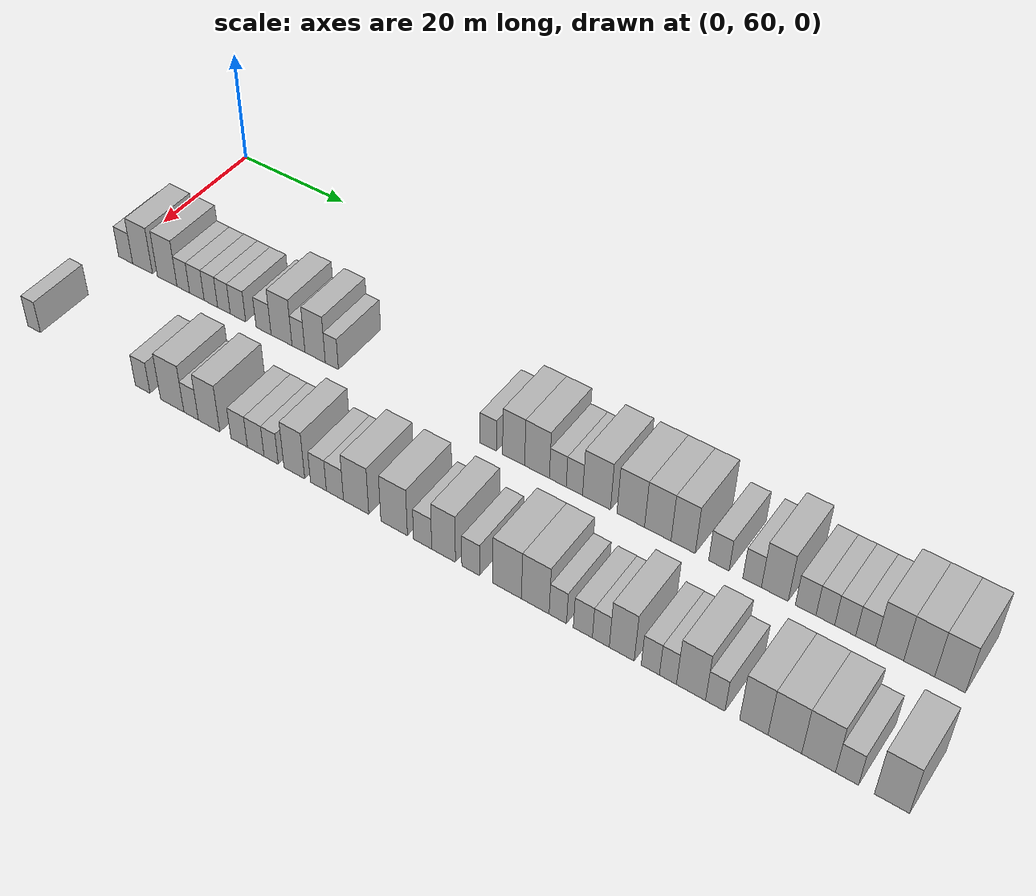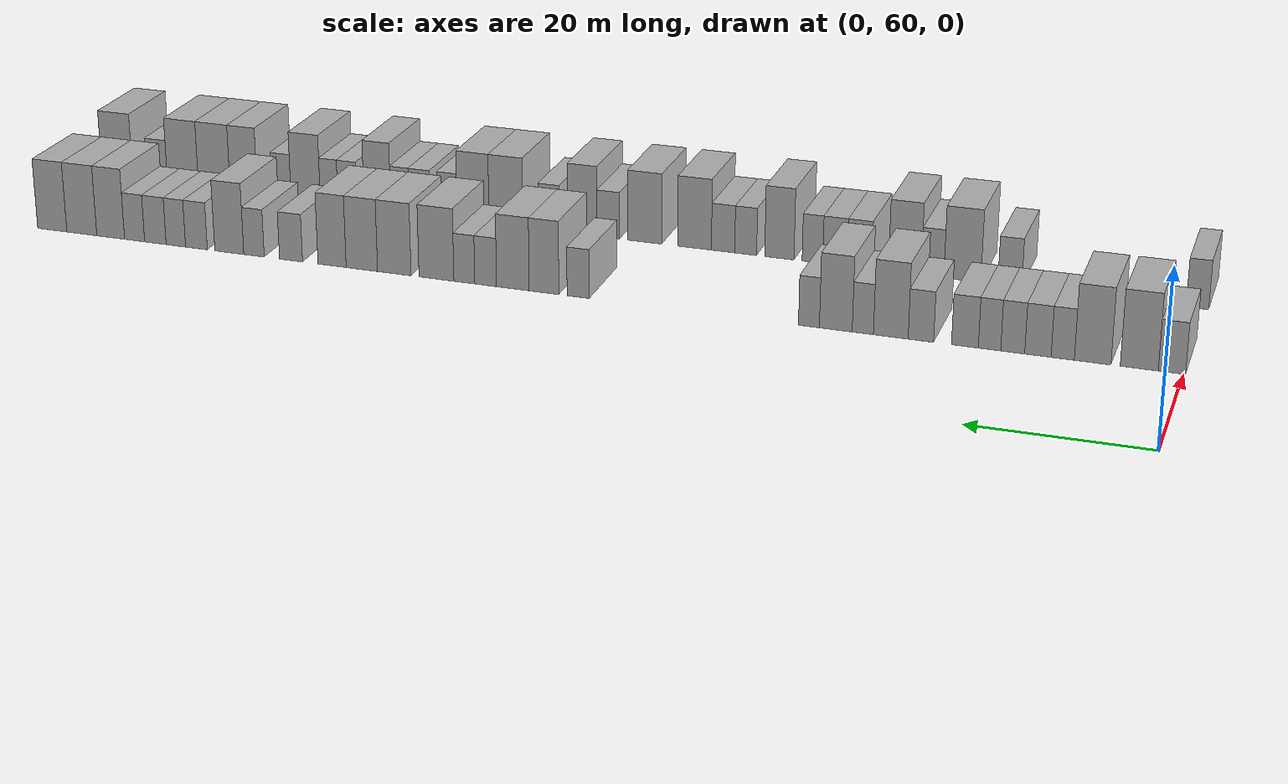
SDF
<sdf version="1.6">
 <world name="default">
  <model name="building_67">
   <static>1</static>
   <pose>25.0000 61.2913 0 0.000000 0.000000 0.000000</pose>
   <link name="link">
    <pose>0 0 3.00 0 0 0</pose>
    <collision name="collision"><geometry><box><size>10.0000 2.9056 6.0000</size></box></geometry></collision>
    <visual name="visual">
     <cast_shadows>0</cast_shadows>
     <geometry><box><size>10.0000 2.9056 6.0000</size></box></geometry>
     <material>
      <script>
       <uri>model://HANNAS_wall/materials/scripts</uri>
       <uri>model://HANNAS_wall/materials/textures</uri>
       <name>vrc/HANNAS_wall</name>
      </script>
     </material>
    </visual>
   </link>
  </model>
  <model name="building_68">
   <static>1</static>
   <pose>25.0000 64.7740 0 0.000000 0.000000 0.000000</pose>
   <link name="link">
    <pose>0 0 4.50 0 0 0</pose>
    <collision name="collision"><geometry><box><size>10.0000 4.0598 9.0000</size></box></geometry></collision>
    <visual name="visual">
     <cast_shadows>0</cast_shadows>
     <geometry><box><size>10.0000 4.0598 9.0000</size></box></geometry>
     <material>
      <script>
       <uri>model://HANNAS_wall/materials/scripts</uri>
       <uri>model://HANNAS_wall/materials/textures</uri>
       <name>vrc/HANNAS_wall</name>
      </script>
     </material>
    </visual>
   </link>
  </model>
  <model name="building_69">
   <static>1</static>
   <pose>25.0000 69.7808 0 0.000000 0.000000 0.000000</pose>
   <link name="link">
    <pose>0 0 4.50 0 0 0</pose>
    <collision name="collision"><geometry><box><size>10.0000 3.9539 9.0000</size></box></geometry></collision>
    <visual name="visual">
     <cast_shadows>0</cast_shadows>
     <geometry><box><size>10.0000 3.9539 9.0000</size></box></geometry>
     <material>
      <script>
       <uri>model://HANNAS_wall/materials/scripts</uri>
       <uri>model://HANNAS_wall/materials/textures</uri>
       <name>vrc/HANNAS_wall</name>
      </script>
     </material>
    </visual>
   </link>
  </model>
  <model name="building_70">
   <static>1</static>
   <pose>25.0000 73.0188 0 0.000000 0.000000 0.000000</pose>
   <link name="link">
    <pose>0 0 3.00 0 0 0</pose>
    <collision name="collision"><geometry><box><size>10.0000 2.5220 6.0000</size></box></geometry></collision>
    <visual name="visual">
     <cast_shadows>0</cast_shadows>
     <geometry><box><size>10.0000 2.5220 6.0000</size></box></geometry>
     <material>
      <script>
       <uri>model://HANNAS_wall/materials/scripts</uri>
       <uri>model://HANNAS_wall/materials/textures</uri>
       <name>vrc/HANNAS_wall</name>
      </script>
     </material>
    </visual>
   </link>
  </model>
  <model name="building_71">
   <static>1</static>
   <pose>25.0000 75.7211 0 0.000000 0.000000 0.000000</pose>
   <link name="link">
    <pose>0 0 3.00 0 0 0</pose>
    <collision name="collision"><geometry><box><size>10.0000 2.8826 6.0000</size></box></geometry></collision>
    <visual name="visual">
     <cast_shadows>0</cast_shadows>
     <geometry><box><size>10.0000 2.8826 6.0000</size></box></geometry>
     <material>
      <script>
       <uri>model://HANNAS_wall/materials/scripts</uri>
       <uri>model://HANNAS_wall/materials/textures</uri>
       <name>vrc/HANNAS_wall</name>
      </script>
     </material>
    </visual>
   </link>
  </model>
  <model name="building_72">
   <static>1</static>
   <pose>25.0000 78.4825 0 0.000000 0.000000 0.000000</pose>
   <link name="link">
    <pose>0 0 3.00 0 0 0</pose>
    <collision name="collision"><geometry><box><size>10.0000 2.6401 6.0000</size></box></geometry></collision>
    <visual name="visual">
     <cast_shadows>0</cast_shadows>
     <geometry><box><size>10.0000 2.6401 6.0000</size></box></geometry>
     <material>
      <script>
       <uri>model://HANNAS_wall/materials/scripts</uri>
       <uri>model://HANNAS_wall/materials/textures</uri>
       <name>vrc/HANNAS_wall</name>
      </script>
     </material>
    </visual>
   </link>
  </model>
  <model name="building_73">
   <static>1</static>
   <pose>25.0000 81.0390 0 0.000000 0.000000 0.000000</pose>
   <link name="link">
    <pose>0 0 3.00 0 0 0</pose>
    <collision name="collision"><geometry><box><size>10.0000 2.4730 6.0000</size></box></geometry></collision>
    <visual name="visual">
     <cast_shadows>0</cast_shadows>
     <geometry><box><size>10.0000 2.4730 6.0000</size></box></geometry>
     <material>
      <script>
       <uri>model://HANNAS_wall/materials/scripts</uri>
       <uri>model://HANNAS_wall/materials/textures</uri>
       <name>vrc/HANNAS_wall</name>
      </script>
     </material>
    </visual>
   </link>
  </model>
  <model name="building_74">
   <static>1</static>
   <pose>25.0000 83.7629 0 0.000000 0.000000 0.000000</pose>
   <link name="link">
    <pose>0 0 3.00 0 0 0</pose>
    <collision name="collision"><geometry><box><size>10.0000 2.9746 6.0000</size></box></geometry></collision>
    <visual name="visual">
     <cast_shadows>0</cast_shadows>
     <geometry><box><size>10.0000 2.9746 6.0000</size></box></geometry>
     <material>
      <script>
       <uri>model://HANNAS_wall/materials/scripts</uri>
       <uri>model://HANNAS_wall/materials/textures</uri>
       <name>vrc/HANNAS_wall</name>
      </script>
     </material>
    </visual>
   </link>
  </model>
  <model name="building_75">
   <static>1</static>
   <pose>25.0000 88.6793 0 0.000000 0.000000 0.000000</pose>
   <link name="link">
    <pose>0 0 3.00 0 0 0</pose>
    <collision name="collision"><geometry><box><size>10.0000 2.8584 6.0000</size></box></geometry></collision>
    <visual name="visual">
     <cast_shadows>0</cast_shadows>
     <geometry><box><size>10.0000 2.8584 6.0000</size></box></geometry>
     <material>
      <script>
       <uri>model://HANNAS_wall/materials/scripts</uri>
       <uri>model://HANNAS_wall/materials/textures</uri>
       <name>vrc/HANNAS_wall</name>
      </script>
     </material>
    </visual>
   </link>
  </model>
  <model name="building_76">
   <static>1</static>
   <pose>25.0000 92.0704 0 0.000000 0.000000 0.000000</pose>
   <link name="link">
    <pose>0 0 4.50 0 0 0</pose>
    <collision name="collision"><geometry><box><size>10.0000 3.9237 9.0000</size></box></geometry></collision>
    <visual name="visual">
     <cast_shadows>0</cast_shadows>
     <geometry><box><size>10.0000 3.9237 9.0000</size></box></geometry>
     <material>
      <script>
       <uri>model://HANNAS_wall/materials/scripts</uri>
       <uri>model://HANNAS_wall/materials/textures</uri>
       <name>vrc/HANNAS_wall</name>
      </script>
     </material>
    </visual>
   </link>
  </model>
  <model name="building_77">
   <static>1</static>
   <pose>25.0000 95.2386 0 0.000000 0.000000 0.000000</pose>
   <link name="link">
    <pose>0 0 3.00 0 0 0</pose>
    <collision name="collision"><geometry><box><size>10.0000 2.4127 6.0000</size></box></geometry></collision>
    <visual name="visual">
     <cast_shadows>0</cast_shadows>
     <geometry><box><size>10.0000 2.4127 6.0000</size></box></geometry>
     <material>
      <script>
       <uri>model://HANNAS_wall/materials/scripts</uri>
       <uri>model://HANNAS_wall/materials/textures</uri>
       <name>vrc/HANNAS_wall</name>
      </script>
     </material>
    </visual>
   </link>
  </model>
  <model name="building_78">
   <static>1</static>
   <pose>25.0000 98.3221 0 0.000000 0.000000 0.000000</pose>
   <link name="link">
    <pose>0 0 4.50 0 0 0</pose>
    <collision name="collision"><geometry><box><size>10.0000 3.7542 9.0000</size></box></geometry></collision>
    <visual name="visual">
     <cast_shadows>0</cast_shadows>
     <geometry><box><size>10.0000 3.7542 9.0000</size></box></geometry>
     <material>
      <script>
       <uri>model://HANNAS_wall/materials/scripts</uri>
       <uri>model://HANNAS_wall/materials/textures</uri>
       <name>vrc/HANNAS_wall</name>
      </script>
     </material>
    </visual>
   </link>
  </model>
  <model name="building_79">
   <static>1</static>
   <pose>25.0000 101.4000 0 0.000000 0.000000 0.000000</pose>
   <link name="link">
    <pose>0 0 3.00 0 0 0</pose>
    <collision name="collision"><geometry><box><size>10.0000 2.4015 6.0000</size></box></geometry></collision>
    <visual name="visual">
     <cast_shadows>0</cast_shadows>
     <geometry><box><size>10.0000 2.4015 6.0000</size></box></geometry>
     <material>
      <script>
       <uri>model://HANNAS_wall/materials/scripts</uri>
       <uri>model://HANNAS_wall/materials/textures</uri>
       <name>vrc/HANNAS_wall</name>
      </script>
     </material>
    </visual>
   </link>
  </model>
  <model name="building_80">
   <static>1</static>
   <pose>25.0000 128.6768 0 0.000000 0.000000 0.000000</pose>
   <link name="link">
    <pose>0 0 3.00 0 0 0</pose>
    <collision name="collision"><geometry><box><size>10.0000 2.7173 6.0000</size></box></geometry></collision>
    <visual name="visual">
     <cast_shadows>0</cast_shadows>
     <geometry><box><size>10.0000 2.7173 6.0000</size></box></geometry>
     <material>
      <script>
       <uri>model://HANNAS_wall/materials/scripts</uri>
       <uri>model://HANNAS_wall/materials/textures</uri>
       <name>vrc/HANNAS_wall</name>
      </script>
     </material>
    </visual>
   </link>
  </model>
  <model name="building_81">
   <static>1</static>
   <pose>25.0000 132.8516 0 0.000000 0.000000 0.000000</pose>
   <link name="link">
    <pose>0 0 4.50 0 0 0</pose>
    <collision name="collision"><geometry><box><size>10.0000 3.6324 9.0000</size></box></geometry></collision>
    <visual name="visual">
     <cast_shadows>0</cast_shadows>
     <geometry><box><size>10.0000 3.6324 9.0000</size></box></geometry>
     <material>
      <script>
       <uri>model://HANNAS_wall/materials/scripts</uri>
       <uri>model://HANNAS_wall/materials/textures</uri>
       <name>vrc/HANNAS_wall</name>
      </script>
     </material>
    </visual>
   </link>
  </model>
  <model name="building_82">
   <static>1</static>
   <pose>25.0000 136.6797 0 0.000000 0.000000 0.000000</pose>
   <link name="link">
    <pose>0 0 4.50 0 0 0</pose>
    <collision name="collision"><geometry><box><size>10.0000 4.0238 9.0000</size></box></geometry></collision>
    <visual name="visual">
     <cast_shadows>0</cast_shadows>
     <geometry><box><size>10.0000 4.0238 9.0000</size></box></geometry>
     <material>
      <script>
       <uri>model://HANNAS_wall/materials/scripts</uri>
       <uri>model://HANNAS_wall/materials/textures</uri>
       <name>vrc/HANNAS_wall</name>
      </script>
     </material>
    </visual>
   </link>
  </model>
  <model name="building_83">
   <static>1</static>
   <pose>25.0000 140.0420 0 0.000000 0.000000 0.000000</pose>
   <link name="link">
    <pose>0 0 3.00 0 0 0</pose>
    <collision name="collision"><geometry><box><size>10.0000 2.7010 6.0000</size></box></geometry></collision>
    <visual name="visual">
     <cast_shadows>0</cast_shadows>
     <geometry><box><size>10.0000 2.7010 6.0000</size></box></geometry>
     <material>
      <script>
       <uri>model://HANNAS_wall/materials/scripts</uri>
       <uri>model://HANNAS_wall/materials/textures</uri>
       <name>vrc/HANNAS_wall</name>
      </script>
     </material>
    </visual>
   </link>
  </model>
  <model name="building_84">
   <static>1</static>
   <pose>25.0000 142.6960 0 0.000000 0.000000 0.000000</pose>
   <link name="link">
    <pose>0 0 3.00 0 0 0</pose>
    <collision name="collision"><geometry><box><size>10.0000 2.6071 6.0000</size></box></geometry></collision>
    <visual name="visual">
     <cast_shadows>0</cast_shadows>
     <geometry><box><size>10.0000 2.6071 6.0000</size></box></geometry>
     <material>
      <script>
       <uri>model://HANNAS_wall/materials/scripts</uri>
       <uri>model://HANNAS_wall/materials/textures</uri>
       <name>vrc/HANNAS_wall</name>
      </script>
     </material>
    </visual>
   </link>
  </model>
  <model name="building_85">
   <static>1</static>
   <pose>25.0000 146.1922 0 0.000000 0.000000 0.000000</pose>
   <link name="link">
    <pose>0 0 4.50 0 0 0</pose>
    <collision name="collision"><geometry><box><size>10.0000 4.3853 9.0000</size></box></geometry></collision>
    <visual name="visual">
     <cast_shadows>0</cast_shadows>
     <geometry><box><size>10.0000 4.3853 9.0000</size></box></geometry>
     <material>
      <script>
       <uri>model://HANNAS_wall/materials/scripts</uri>
       <uri>model://HANNAS_wall/materials/textures</uri>
       <name>vrc/HANNAS_wall</name>
      </script>
     </material>
    </visual>
   </link>
  </model>
  <model name="building_86">
   <static>1</static>
   <pose>25.0000 151.5108 0 0.000000 0.000000 0.000000</pose>
   <link name="link">
    <pose>0 0 4.50 0 0 0</pose>
    <collision name="collision"><geometry><box><size>10.0000 4.2520 9.0000</size></box></geometry></collision>
    <visual name="visual">
     <cast_shadows>0</cast_shadows>
     <geometry><box><size>10.0000 4.2520 9.0000</size></box></geometry>
     <material>
      <script>
       <uri>model://HANNAS_wall/materials/scripts</uri>
       <uri>model://HANNAS_wall/materials/textures</uri>
       <name>vrc/HANNAS_wall</name>
      </script>
     </material>
    </visual>
   </link>
  </model>
  <model name="building_87">
   <static>1</static>
   <pose>25.0000 155.6485 0 0.000000 0.000000 0.000000</pose>
   <link name="link">
    <pose>0 0 4.50 0 0 0</pose>
    <collision name="collision"><geometry><box><size>10.0000 4.0234 9.0000</size></box></geometry></collision>
    <visual name="visual">
     <cast_shadows>0</cast_shadows>
     <geometry><box><size>10.0000 4.0234 9.0000</size></box></geometry>
     <material>
      <script>
       <uri>model://HANNAS_wall/materials/scripts</uri>
       <uri>model://HANNAS_wall/materials/textures</uri>
       <name>vrc/HANNAS_wall</name>
      </script>
     </material>
    </visual>
   </link>
  </model>
  <model name="building_88">
   <static>1</static>
   <pose>25.0000 159.4734 0 0.000000 0.000000 0.000000</pose>
   <link name="link">
    <pose>0 0 4.50 0 0 0</pose>
    <collision name="collision"><geometry><box><size>10.0000 3.6264 9.0000</size></box></geometry></collision>
    <visual name="visual">
     <cast_shadows>0</cast_shadows>
     <geometry><box><size>10.0000 3.6264 9.0000</size></box></geometry>
     <material>
      <script>
       <uri>model://HANNAS_wall/materials/scripts</uri>
       <uri>model://HANNAS_wall/materials/textures</uri>
       <name>vrc/HANNAS_wall</name>
      </script>
     </material>
    </visual>
   </link>
  </model>
  <model name="building_89">
   <static>1</static>
   <pose>25.0000 164.7849 0 0.000000 0.000000 0.000000</pose>
   <link name="link">
    <pose>0 0 3.00 0 0 0</pose>
    <collision name="collision"><geometry><box><size>10.0000 2.9966 6.0000</size></box></geometry></collision>
    <visual name="visual">
     <cast_shadows>0</cast_shadows>
     <geometry><box><size>10.0000 2.9966 6.0000</size></box></geometry>
     <material>
      <script>
       <uri>model://HANNAS_wall/materials/scripts</uri>
       <uri>model://HANNAS_wall/materials/textures</uri>
       <name>vrc/HANNAS_wall</name>
      </script>
     </material>
    </visual>
   </link>
  </model>
  <model name="building_90">
   <static>1</static>
   <pose>25.0000 169.6237 0 0.000000 0.000000 0.000000</pose>
   <link name="link">
    <pose>0 0 3.00 0 0 0</pose>
    <collision name="collision"><geometry><box><size>10.0000 2.6809 6.0000</size></box></geometry></collision>
    <visual name="visual">
     <cast_shadows>0</cast_shadows>
     <geometry><box><size>10.0000 2.6809 6.0000</size></box></geometry>
     <material>
      <script>
       <uri>model://HANNAS_wall/materials/scripts</uri>
       <uri>model://HANNAS_wall/materials/textures</uri>
       <name>vrc/HANNAS_wall</name>
      </script>
     </material>
    </visual>
   </link>
  </model>
  <model name="building_91">
   <static>1</static>
   <pose>25.0000 172.8770 0 0.000000 0.000000 0.000000</pose>
   <link name="link">
    <pose>0 0 4.50 0 0 0</pose>
    <collision name="collision"><geometry><box><size>10.0000 3.8257 9.0000</size></box></geometry></collision>
    <visual name="visual">
     <cast_shadows>0</cast_shadows>
     <geometry><box><size>10.0000 3.8257 9.0000</size></box></geometry>
     <material>
      <script>
       <uri>model://HANNAS_wall/materials/scripts</uri>
       <uri>model://HANNAS_wall/materials/textures</uri>
       <name>vrc/HANNAS_wall</name>
      </script>
     </material>
    </visual>
   </link>
  </model>
  <model name="building_92">
   <static>1</static>
   <pose>25.0000 177.2378 0 0.000000 0.000000 0.000000</pose>
   <link name="link">
    <pose>0 0 3.00 0 0 0</pose>
    <collision name="collision"><geometry><box><size>10.0000 2.8958 6.0000</size></box></geometry></collision>
    <visual name="visual">
     <cast_shadows>0</cast_shadows>
     <geometry><box><size>10.0000 2.8958 6.0000</size></box></geometry>
     <material>
      <script>
       <uri>model://HANNAS_wall/materials/scripts</uri>
       <uri>model://HANNAS_wall/materials/textures</uri>
       <name>vrc/HANNAS_wall</name>
      </script>
     </material>
    </visual>
   </link>
  </model>
  <model name="building_93">
   <static>1</static>
   <pose>25.0000 179.9889 0 0.000000 0.000000 0.000000</pose>
   <link name="link">
    <pose>0 0 3.00 0 0 0</pose>
    <collision name="collision"><geometry><box><size>10.0000 2.6063 6.0000</size></box></geometry></collision>
    <visual name="visual">
     <cast_shadows>0</cast_shadows>
     <geometry><box><size>10.0000 2.6063 6.0000</size></box></geometry>
     <material>
      <script>
       <uri>model://HANNAS_wall/materials/scripts</uri>
       <uri>model://HANNAS_wall/materials/textures</uri>
       <name>vrc/HANNAS_wall</name>
      </script>
     </material>
    </visual>
   </link>
  </model>
  <model name="building_94">
   <static>1</static>
   <pose>25.0000 182.7370 0 0.000000 0.000000 0.000000</pose>
   <link name="link">
    <pose>0 0 3.00 0 0 0</pose>
    <collision name="collision"><geometry><box><size>10.0000 2.8899 6.0000</size></box></geometry></collision>
    <visual name="visual">
     <cast_shadows>0</cast_shadows>
     <geometry><box><size>10.0000 2.8899 6.0000</size></box></geometry>
     <material>
      <script>
       <uri>model://HANNAS_wall/materials/scripts</uri>
       <uri>model://HANNAS_wall/materials/textures</uri>
       <name>vrc/HANNAS_wall</name>
      </script>
     </material>
    </visual>
   </link>
  </model>
  <model name="building_95">
   <static>1</static>
   <pose>25.0000 185.5376 0 0.000000 0.000000 0.000000</pose>
   <link name="link">
    <pose>0 0 3.00 0 0 0</pose>
    <collision name="collision"><geometry><box><size>10.0000 2.7113 6.0000</size></box></geometry></collision>
    <visual name="visual">
     <cast_shadows>0</cast_shadows>
     <geometry><box><size>10.0000 2.7113 6.0000</size></box></geometry>
     <material>
      <script>
       <uri>model://HANNAS_wall/materials/scripts</uri>
       <uri>model://HANNAS_wall/materials/textures</uri>
       <name>vrc/HANNAS_wall</name>
      </script>
     </material>
    </visual>
   </link>
  </model>
  <model name="building_96">
   <static>1</static>
   <pose>25.0000 188.7837 0 0.000000 0.000000 0.000000</pose>
   <link name="link">
    <pose>0 0 4.50 0 0 0</pose>
    <collision name="collision"><geometry><box><size>10.0000 3.7809 9.0000</size></box></geometry></collision>
    <visual name="visual">
     <cast_shadows>0</cast_shadows>
     <geometry><box><size>10.0000 3.7809 9.0000</size></box></geometry>
     <material>
      <script>
       <uri>model://HANNAS_wall/materials/scripts</uri>
       <uri>model://HANNAS_wall/materials/textures</uri>
       <name>vrc/HANNAS_wall</name>
      </script>
     </material>
    </visual>
   </link>
  </model>
  <model name="building_97">
   <static>1</static>
   <pose>25.0000 192.7272 0 0.000000 0.000000 0.000000</pose>
   <link name="link">
    <pose>0 0 4.50 0 0 0</pose>
    <collision name="collision"><geometry><box><size>10.0000 4.1061 9.0000</size></box></geometry></collision>
    <visual name="visual">
     <cast_shadows>0</cast_shadows>
     <geometry><box><size>10.0000 4.1061 9.0000</size></box></geometry>
     <material>
      <script>
       <uri>model://HANNAS_wall/materials/scripts</uri>
       <uri>model://HANNAS_wall/materials/textures</uri>
       <name>vrc/HANNAS_wall</name>
      </script>
     </material>
    </visual>
   </link>
  </model>
  <model name="building_98">
   <static>1</static>
   <pose>25.0000 196.7880 0 0.000000 0.000000 0.000000</pose>
   <link name="link">
    <pose>0 0 4.50 0 0 0</pose>
    <collision name="collision"><geometry><box><size>10.0000 4.0155 9.0000</size></box></geometry></collision>
    <visual name="visual">
     <cast_shadows>0</cast_shadows>
     <geometry><box><size>10.0000 4.0155 9.0000</size></box></geometry>
     <material>
      <script>
       <uri>model://HANNAS_wall/materials/scripts</uri>
       <uri>model://HANNAS_wall/materials/textures</uri>
       <name>vrc/HANNAS_wall</name>
      </script>
     </material>
    </visual>
   </link>
  </model>
  <model name="building_157">
   <static>1</static>
   <pose>44.0000 60.8406 0 0.000000 0.000000 0.000000</pose>
   <link name="link">
    <pose>0 0 3.00 0 0 0</pose>
    <collision name="collision"><geometry><box><size>10.0000 2.5375 6.0000</size></box></geometry></collision>
    <visual name="visual">
     <cast_shadows>0</cast_shadows>
     <geometry><box><size>10.0000 2.5375 6.0000</size></box></geometry>
     <material>
      <script>
       <uri>model://HANNAS_wall/materials/scripts</uri>
       <uri>model://HANNAS_wall/materials/textures</uri>
       <name>vrc/HANNAS_wall</name>
      </script>
     </material>
    </visual>
   </link>
  </model>
  <model name="building_158">
   <static>1</static>
   <pose>44.0000 82.2959 0 0.000000 0.000000 0.000000</pose>
   <link name="link">
    <pose>0 0 3.00 0 0 0</pose>
    <collision name="collision"><geometry><box><size>10.0000 2.7910 6.0000</size></box></geometry></collision>
    <visual name="visual">
     <cast_shadows>0</cast_shadows>
     <geometry><box><size>10.0000 2.7910 6.0000</size></box></geometry>
     <material>
      <script>
       <uri>model://HANNAS_wall/materials/scripts</uri>
       <uri>model://HANNAS_wall/materials/textures</uri>
       <name>vrc/HANNAS_wall</name>
      </script>
     </material>
    </visual>
   </link>
  </model>
  <model name="building_159">
   <static>1</static>
   <pose>44.0000 87.8762 0 0.000000 0.000000 0.000000</pose>
   <link name="link">
    <pose>0 0 4.50 0 0 0</pose>
    <collision name="collision"><geometry><box><size>10.0000 4.3695 9.0000</size></box></geometry></collision>
    <visual name="visual">
     <cast_shadows>0</cast_shadows>
     <geometry><box><size>10.0000 4.3695 9.0000</size></box></geometry>
     <material>
      <script>
       <uri>model://HANNAS_wall/materials/scripts</uri>
       <uri>model://HANNAS_wall/materials/textures</uri>
       <name>vrc/HANNAS_wall</name>
      </script>
     </material>
    </visual>
   </link>
  </model>
  <model name="building_160">
   <static>1</static>
   <pose>44.0000 91.4049 0 0.000000 0.000000 0.000000</pose>
   <link name="link">
    <pose>0 0 3.00 0 0 0</pose>
    <collision name="collision"><geometry><box><size>10.0000 2.6880 6.0000</size></box></geometry></collision>
    <visual name="visual">
     <cast_shadows>0</cast_shadows>
     <geometry><box><size>10.0000 2.6880 6.0000</size></box></geometry>
     <material>
      <script>
       <uri>model://HANNAS_wall/materials/scripts</uri>
       <uri>model://HANNAS_wall/materials/textures</uri>
       <name>vrc/HANNAS_wall</name>
      </script>
     </material>
    </visual>
   </link>
  </model>
  <model name="building_161">
   <static>1</static>
   <pose>44.0000 94.7103 0 0.000000 0.000000 0.000000</pose>
   <link name="link">
    <pose>0 0 4.50 0 0 0</pose>
    <collision name="collision"><geometry><box><size>10.0000 3.9229 9.0000</size></box></geometry></collision>
    <visual name="visual">
     <cast_shadows>0</cast_shadows>
     <geometry><box><size>10.0000 3.9229 9.0000</size></box></geometry>
     <material>
      <script>
       <uri>model://HANNAS_wall/materials/scripts</uri>
       <uri>model://HANNAS_wall/materials/textures</uri>
       <name>vrc/HANNAS_wall</name>
      </script>
     </material>
    </visual>
   </link>
  </model>
  <model name="building_162">
   <static>1</static>
   <pose>44.0000 100.1592 0 0.000000 0.000000 0.000000</pose>
   <link name="link">
    <pose>0 0 3.00 0 0 0</pose>
    <collision name="collision"><geometry><box><size>10.0000 2.9749 6.0000</size></box></geometry></collision>
    <visual name="visual">
     <cast_shadows>0</cast_shadows>
     <geometry><box><size>10.0000 2.9749 6.0000</size></box></geometry>
     <material>
      <script>
       <uri>model://HANNAS_wall/materials/scripts</uri>
       <uri>model://HANNAS_wall/materials/textures</uri>
       <name>vrc/HANNAS_wall</name>
      </script>
     </material>
    </visual>
   </link>
  </model>
  <model name="building_163">
   <static>1</static>
   <pose>44.0000 103.1278 0 0.000000 0.000000 0.000000</pose>
   <link name="link">
    <pose>0 0 3.00 0 0 0</pose>
    <collision name="collision"><geometry><box><size>10.0000 2.9621 6.0000</size></box></geometry></collision>
    <visual name="visual">
     <cast_shadows>0</cast_shadows>
     <geometry><box><size>10.0000 2.9621 6.0000</size></box></geometry>
     <material>
      <script>
       <uri>model://HANNAS_wall/materials/scripts</uri>
       <uri>model://HANNAS_wall/materials/textures</uri>
       <name>vrc/HANNAS_wall</name>
      </script>
     </material>
    </visual>
   </link>
  </model>
  <model name="building_164">
   <static>1</static>
   <pose>44.0000 105.8657 0 0.000000 0.000000 0.000000</pose>
   <link name="link">
    <pose>0 0 3.00 0 0 0</pose>
    <collision name="collision"><geometry><box><size>10.0000 2.5137 6.0000</size></box></geometry></collision>
    <visual name="visual">
     <cast_shadows>0</cast_shadows>
     <geometry><box><size>10.0000 2.5137 6.0000</size></box></geometry>
     <material>
      <script>
       <uri>model://HANNAS_wall/materials/scripts</uri>
       <uri>model://HANNAS_wall/materials/textures</uri>
       <name>vrc/HANNAS_wall</name>
      </script>
     </material>
    </visual>
   </link>
  </model>
  <model name="building_165">
   <static>1</static>
   <pose>44.0000 109.9228 0 0.000000 0.000000 0.000000</pose>
   <link name="link">
    <pose>0 0 4.50 0 0 0</pose>
    <collision name="collision"><geometry><box><size>10.0000 3.6006 9.0000</size></box></geometry></collision>
    <visual name="visual">
     <cast_shadows>0</cast_shadows>
     <geometry><box><size>10.0000 3.6006 9.0000</size></box></geometry>
     <material>
      <script>
       <uri>model://HANNAS_wall/materials/scripts</uri>
       <uri>model://HANNAS_wall/materials/textures</uri>
       <name>vrc/HANNAS_wall</name>
      </script>
     </material>
    </visual>
   </link>
  </model>
  <model name="building_166">
   <static>1</static>
   <pose>44.0000 114.0828 0 0.000000 0.000000 0.000000</pose>
   <link name="link">
    <pose>0 0 3.00 0 0 0</pose>
    <collision name="collision"><geometry><box><size>10.0000 2.7194 6.0000</size></box></geometry></collision>
    <visual name="visual">
     <cast_shadows>0</cast_shadows>
     <geometry><box><size>10.0000 2.7194 6.0000</size></box></geometry>
     <material>
      <script>
       <uri>model://HANNAS_wall/materials/scripts</uri>
       <uri>model://HANNAS_wall/materials/textures</uri>
       <name>vrc/HANNAS_wall</name>
      </script>
     </material>
    </visual>
   </link>
  </model>
  <model name="building_167">
   <static>1</static>
   <pose>44.0000 116.8966 0 0.000000 0.000000 0.000000</pose>
   <link name="link">
    <pose>0 0 3.00 0 0 0</pose>
    <collision name="collision"><geometry><box><size>10.0000 2.9082 6.0000</size></box></geometry></collision>
    <visual name="visual">
     <cast_shadows>0</cast_shadows>
     <geometry><box><size>10.0000 2.9082 6.0000</size></box></geometry>
     <material>
      <script>
       <uri>model://HANNAS_wall/materials/scripts</uri>
       <uri>model://HANNAS_wall/materials/textures</uri>
       <name>vrc/HANNAS_wall</name>
      </script>
     </material>
    </visual>
   </link>
  </model>
  <model name="building_168">
   <static>1</static>
   <pose>44.0000 120.4729 0 0.000000 0.000000 0.000000</pose>
   <link name="link">
    <pose>0 0 4.50 0 0 0</pose>
    <collision name="collision"><geometry><box><size>10.0000 4.2444 9.0000</size></box></geometry></collision>
    <visual name="visual">
     <cast_shadows>0</cast_shadows>
     <geometry><box><size>10.0000 4.2444 9.0000</size></box></geometry>
     <material>
      <script>
       <uri>model://HANNAS_wall/materials/scripts</uri>
       <uri>model://HANNAS_wall/materials/textures</uri>
       <name>vrc/HANNAS_wall</name>
      </script>
     </material>
    </visual>
   </link>
  </model>
  <model name="building_169">
   <static>1</static>
   <pose>44.0000 126.7701 0 0.000000 0.000000 0.000000</pose>
   <link name="link">
    <pose>0 0 4.50 0 0 0</pose>
    <collision name="collision"><geometry><box><size>10.0000 4.3499 9.0000</size></box></geometry></collision>
    <visual name="visual">
     <cast_shadows>0</cast_shadows>
     <geometry><box><size>10.0000 4.3499 9.0000</size></box></geometry>
     <material>
      <script>
       <uri>model://HANNAS_wall/materials/scripts</uri>
       <uri>model://HANNAS_wall/materials/textures</uri>
       <name>vrc/HANNAS_wall</name>
      </script>
     </material>
    </visual>
   </link>
  </model>
  <model name="building_170">
   <static>1</static>
   <pose>44.0000 131.4054 0 0.000000 0.000000 0.000000</pose>
   <link name="link">
    <pose>0 0 3.00 0 0 0</pose>
    <collision name="collision"><geometry><box><size>10.0000 2.9207 6.0000</size></box></geometry></collision>
    <visual name="visual">
     <cast_shadows>0</cast_shadows>
     <geometry><box><size>10.0000 2.9207 6.0000</size></box></geometry>
     <material>
      <script>
       <uri>model://HANNAS_wall/materials/scripts</uri>
       <uri>model://HANNAS_wall/materials/textures</uri>
       <name>vrc/HANNAS_wall</name>
      </script>
     </material>
    </visual>
   </link>
  </model>
  <model name="building_171">
   <static>1</static>
   <pose>44.0000 134.7583 0 0.000000 0.000000 0.000000</pose>
   <link name="link">
    <pose>0 0 4.50 0 0 0</pose>
    <collision name="collision"><geometry><box><size>10.0000 3.7851 9.0000</size></box></geometry></collision>
    <visual name="visual">
     <cast_shadows>0</cast_shadows>
     <geometry><box><size>10.0000 3.7851 9.0000</size></box></geometry>
     <material>
      <script>
       <uri>model://HANNAS_wall/materials/scripts</uri>
       <uri>model://HANNAS_wall/materials/textures</uri>
       <name>vrc/HANNAS_wall</name>
      </script>
     </material>
    </visual>
   </link>
  </model>
  <model name="building_172">
   <static>1</static>
   <pose>44.0000 139.0428 0 0.000000 0.000000 0.000000</pose>
   <link name="link">
    <pose>0 0 3.00 0 0 0</pose>
    <collision name="collision"><geometry><box><size>10.0000 2.7839 6.0000</size></box></geometry></collision>
    <visual name="visual">
     <cast_shadows>0</cast_shadows>
     <geometry><box><size>10.0000 2.7839 6.0000</size></box></geometry>
     <material>
      <script>
       <uri>model://HANNAS_wall/materials/scripts</uri>
       <uri>model://HANNAS_wall/materials/textures</uri>
       <name>vrc/HANNAS_wall</name>
      </script>
     </material>
    </visual>
   </link>
  </model>
  <model name="building_173">
   <static>1</static>
   <pose>44.0000 144.6569 0 0.000000 0.000000 0.000000</pose>
   <link name="link">
    <pose>0 0 4.50 0 0 0</pose>
    <collision name="collision"><geometry><box><size>10.0000 4.4444 9.0000</size></box></geometry></collision>
    <visual name="visual">
     <cast_shadows>0</cast_shadows>
     <geometry><box><size>10.0000 4.4444 9.0000</size></box></geometry>
     <material>
      <script>
       <uri>model://HANNAS_wall/materials/scripts</uri>
       <uri>model://HANNAS_wall/materials/textures</uri>
       <name>vrc/HANNAS_wall</name>
      </script>
     </material>
    </visual>
   </link>
  </model>
  <model name="building_174">
   <static>1</static>
   <pose>44.0000 148.9816 0 0.000000 0.000000 0.000000</pose>
   <link name="link">
    <pose>0 0 4.50 0 0 0</pose>
    <collision name="collision"><geometry><box><size>10.0000 4.2051 9.0000</size></box></geometry></collision>
    <visual name="visual">
     <cast_shadows>0</cast_shadows>
     <geometry><box><size>10.0000 4.2051 9.0000</size></box></geometry>
     <material>
      <script>
       <uri>model://HANNAS_wall/materials/scripts</uri>
       <uri>model://HANNAS_wall/materials/textures</uri>
       <name>vrc/HANNAS_wall</name>
      </script>
     </material>
    </visual>
   </link>
  </model>
  <model name="building_175">
   <static>1</static>
   <pose>44.0000 152.3858 0 0.000000 0.000000 0.000000</pose>
   <link name="link">
    <pose>0 0 3.00 0 0 0</pose>
    <collision name="collision"><geometry><box><size>10.0000 2.6033 6.0000</size></box></geometry></collision>
    <visual name="visual">
     <cast_shadows>0</cast_shadows>
     <geometry><box><size>10.0000 2.6033 6.0000</size></box></geometry>
     <material>
      <script>
       <uri>model://HANNAS_wall/materials/scripts</uri>
       <uri>model://HANNAS_wall/materials/textures</uri>
       <name>vrc/HANNAS_wall</name>
      </script>
     </material>
    </visual>
   </link>
  </model>
  <model name="building_176">
   <static>1</static>
   <pose>44.0000 156.0935 0 0.000000 0.000000 0.000000</pose>
   <link name="link">
    <pose>0 0 3.00 0 0 0</pose>
    <collision name="collision"><geometry><box><size>10.0000 2.8120 6.0000</size></box></geometry></collision>
    <visual name="visual">
     <cast_shadows>0</cast_shadows>
     <geometry><box><size>10.0000 2.8120 6.0000</size></box></geometry>
     <material>
      <script>
       <uri>model://HANNAS_wall/materials/scripts</uri>
       <uri>model://HANNAS_wall/materials/textures</uri>
       <name>vrc/HANNAS_wall</name>
      </script>
     </material>
    </visual>
   </link>
  </model>
  <model name="building_177">
   <static>1</static>
   <pose>44.0000 158.7327 0 0.000000 0.000000 0.000000</pose>
   <link name="link">
    <pose>0 0 3.00 0 0 0</pose>
    <collision name="collision"><geometry><box><size>10.0000 2.4664 6.0000</size></box></geometry></collision>
    <visual name="visual">
     <cast_shadows>0</cast_shadows>
     <geometry><box><size>10.0000 2.4664 6.0000</size></box></geometry>
     <material>
      <script>
       <uri>model://HANNAS_wall/materials/scripts</uri>
       <uri>model://HANNAS_wall/materials/textures</uri>
       <name>vrc/HANNAS_wall</name>
      </script>
     </material>
    </visual>
   </link>
  </model>
  <model name="building_178">
   <static>1</static>
   <pose>44.0000 161.7661 0 0.000000 0.000000 0.000000</pose>
   <link name="link">
    <pose>0 0 4.50 0 0 0</pose>
    <collision name="collision"><geometry><box><size>10.0000 3.6005 9.0000</size></box></geometry></collision>
    <visual name="visual">
     <cast_shadows>0</cast_shadows>
     <geometry><box><size>10.0000 3.6005 9.0000</size></box></geometry>
     <material>
      <script>
       <uri>model://HANNAS_wall/materials/scripts</uri>
       <uri>model://HANNAS_wall/materials/textures</uri>
       <name>vrc/HANNAS_wall</name>
      </script>
     </material>
    </visual>
   </link>
  </model>
  <model name="building_179">
   <static>1</static>
   <pose>44.0000 165.8576 0 0.000000 0.000000 0.000000</pose>
   <link name="link">
    <pose>0 0 3.00 0 0 0</pose>
    <collision name="collision"><geometry><box><size>10.0000 2.5824 6.0000</size></box></geometry></collision>
    <visual name="visual">
     <cast_shadows>0</cast_shadows>
     <geometry><box><size>10.0000 2.5824 6.0000</size></box></geometry>
     <material>
      <script>
       <uri>model://HANNAS_wall/materials/scripts</uri>
       <uri>model://HANNAS_wall/materials/textures</uri>
       <name>vrc/HANNAS_wall</name>
      </script>
     </material>
    </visual>
   </link>
  </model>
  <model name="building_180">
   <static>1</static>
   <pose>44.0000 168.3498 0 0.000000 0.000000 0.000000</pose>
   <link name="link">
    <pose>0 0 3.00 0 0 0</pose>
    <collision name="collision"><geometry><box><size>10.0000 2.4021 6.0000</size></box></geometry></collision>
    <visual name="visual">
     <cast_shadows>0</cast_shadows>
     <geometry><box><size>10.0000 2.4021 6.0000</size></box></geometry>
     <material>
      <script>
       <uri>model://HANNAS_wall/materials/scripts</uri>
       <uri>model://HANNAS_wall/materials/textures</uri>
       <name>vrc/HANNAS_wall</name>
      </script>
     </material>
    </visual>
   </link>
  </model>
  <model name="building_181">
   <static>1</static>
   <pose>44.0000 171.5708 0 0.000000 0.000000 0.000000</pose>
   <link name="link">
    <pose>0 0 4.50 0 0 0</pose>
    <collision name="collision"><geometry><box><size>10.0000 4.0398 9.0000</size></box></geometry></collision>
    <visual name="visual">
     <cast_shadows>0</cast_shadows>
     <geometry><box><size>10.0000 4.0398 9.0000</size></box></geometry>
     <material>
      <script>
       <uri>model://HANNAS_wall/materials/scripts</uri>
       <uri>model://HANNAS_wall/materials/textures</uri>
       <name>vrc/HANNAS_wall</name>
      </script>
     </material>
    </visual>
   </link>
  </model>
  <model name="building_182">
   <static>1</static>
   <pose>44.0000 174.9211 0 0.000000 0.000000 0.000000</pose>
   <link name="link">
    <pose>0 0 3.00 0 0 0</pose>
    <collision name="collision"><geometry><box><size>10.0000 2.6610 6.0000</size></box></geometry></collision>
    <visual name="visual">
     <cast_shadows>0</cast_shadows>
     <geometry><box><size>10.0000 2.6610 6.0000</size></box></geometry>
     <material>
      <script>
       <uri>model://HANNAS_wall/materials/scripts</uri>
       <uri>model://HANNAS_wall/materials/textures</uri>
       <name>vrc/HANNAS_wall</name>
      </script>
     </material>
    </visual>
   </link>
  </model>
  <model name="building_183">
   <static>1</static>
   <pose>44.0000 180.1537 0 0.000000 0.000000 0.000000</pose>
   <link name="link">
    <pose>0 0 4.50 0 0 0</pose>
    <collision name="collision"><geometry><box><size>10.0000 3.8043 9.0000</size></box></geometry></collision>
    <visual name="visual">
     <cast_shadows>0</cast_shadows>
     <geometry><box><size>10.0000 3.8043 9.0000</size></box></geometry>
     <material>
      <script>
       <uri>model://HANNAS_wall/materials/scripts</uri>
       <uri>model://HANNAS_wall/materials/textures</uri>
       <name>vrc/HANNAS_wall</name>
      </script>
     </material>
    </visual>
   </link>
  </model>
  <model name="building_184">
   <static>1</static>
   <pose>44.0000 184.2860 0 0.000000 0.000000 0.000000</pose>
   <link name="link">
    <pose>0 0 4.50 0 0 0</pose>
    <collision name="collision"><geometry><box><size>10.0000 4.4604 9.0000</size></box></geometry></collision>
    <visual name="visual">
     <cast_shadows>0</cast_shadows>
     <geometry><box><size>10.0000 4.4604 9.0000</size></box></geometry>
     <material>
      <script>
       <uri>model://HANNAS_wall/materials/scripts</uri>
       <uri>model://HANNAS_wall/materials/textures</uri>
       <name>vrc/HANNAS_wall</name>
      </script>
     </material>
    </visual>
   </link>
  </model>
  <model name="building_185">
   <static>1</static>
   <pose>44.0000 188.7129 0 0.000000 0.000000 0.000000</pose>
   <link name="link">
    <pose>0 0 4.50 0 0 0</pose>
    <collision name="collision"><geometry><box><size>10.0000 4.3934 9.0000</size></box></geometry></collision>
    <visual name="visual">
     <cast_shadows>0</cast_shadows>
     <geometry><box><size>10.0000 4.3934 9.0000</size></box></geometry>
     <material>
      <script>
       <uri>model://HANNAS_wall/materials/scripts</uri>
       <uri>model://HANNAS_wall/materials/textures</uri>
       <name>vrc/HANNAS_wall</name>
      </script>
     </material>
    </visual>
   </link>
  </model>
  <model name="building_186">
   <static>1</static>
   <pose>44.0000 192.3859 0 0.000000 0.000000 0.000000</pose>
   <link name="link">
    <pose>0 0 3.00 0 0 0</pose>
    <collision name="collision"><geometry><box><size>10.0000 2.9526 6.0000</size></box></geometry></collision>
    <visual name="visual">
     <cast_shadows>0</cast_shadows>
     <geometry><box><size>10.0000 2.9526 6.0000</size></box></geometry>
     <material>
      <script>
       <uri>model://HANNAS_wall/materials/scripts</uri>
       <uri>model://HANNAS_wall/materials/textures</uri>
       <name>vrc/HANNAS_wall</name>
      </script>
     </material>
    </visual>
   </link>
  </model>
  <model name="building_187">
   <static>1</static>
   <pose>44.0000 198.0743 0 0.000000 0.000000 0.000000</pose>
   <link name="link">
    <pose>0 0 4.50 0 0 0</pose>
    <collision name="collision"><geometry><box><size>10.0000 4.4243 9.0000</size></box></geometry></collision>
    <visual name="visual">
     <cast_shadows>0</cast_shadows>
     <geometry><box><size>10.0000 4.4243 9.0000</size></box></geometry>
     <material>
      <script>
       <uri>model://HANNAS_wall/materials/scripts</uri>
       <uri>model://HANNAS_wall/materials/textures</uri>
       <name>vrc/HANNAS_wall</name>
      </script>
     </material>
    </visual>
   </link>
  </model>
 </world>
</sdf>
